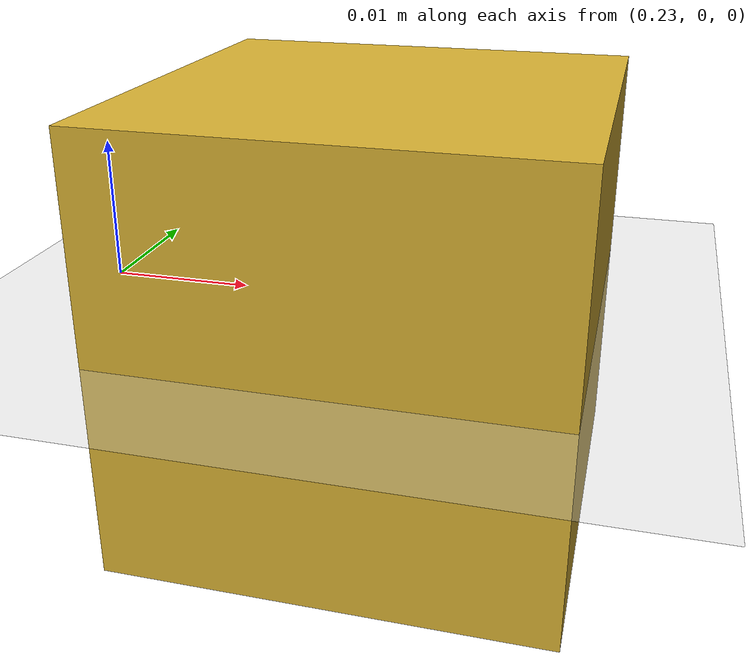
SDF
<?xml version="1.0"?>
<sdf version="1.7">
  <world name="default">
    <include>
      <uri>model://ground_plane</uri>
    </include>
    <include>
      <uri>model://sun</uri>
    </include>
    <include>
      <uri>model://block</uri>
      <pose>0.25 0.0 0.0 0.0 0.0 0.0</pose>
    </include>
  </world>
</sdf>

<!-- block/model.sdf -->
<sdf version="1.7">
  <model name="block">
    <pose>0.0 0.0 0.015 0.0 0.0 0.0</pose>
    <static>false</static>
    <link name="block_link">
      <pose>0.0 0.0 0.0 0.0 0.0 0.0</pose>
      <inertial>
        <inertia>
          <ixx>0.001</ixx>
          <ixy>0.0</ixy>
          <ixz>0.0</ixz>
          <iyy>0.001</iyy>
          <iyz>0.0</iyz>
          <izz>0.001</izz>
        </inertia>
        <mass>0.01</mass>
      </inertial>
      <collision name="block_collision">
        <pose>0.0 0.0 0.0 0.0 0.0 0.0</pose>
        <geometry>
          <box>
            <size>0.03 0.03 0.03</size>
	      </box>
        </geometry>
      </collision>
      <visual name="block_visual">
        <pose>0.0 0.0 0.0 0.0 0.0 0.0</pose>
        <geometry>
          <box>
            <size>0.03 0.03 0.03</size>
	      </box>
        </geometry>
        <material>
          <script>
            <uri>file://media/materials/scripts/gazebo.material</uri>
            <name>Gazebo/Gold</name>
          </script>
        </material>
      </visual>
    </link>
  </model>
</sdf>
